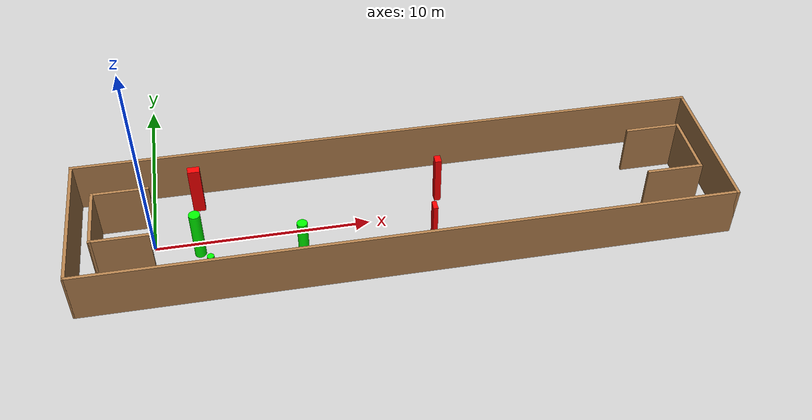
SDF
<sdf version="1.7">
 <world name="default">
  <light name="sun" type="directional">
   <pose>0 0 10 0 -0 0</pose>
   <diffuse>0.8 0.8 0.8 1</diffuse>
   <specular>0.2 0.2 0.2 1</specular>
   <attenuation>
    <range>1000</range>
    <constant>0.9</constant>
    <linear>0.01</linear>
    <quadratic>0.001</quadratic>
   </attenuation>
   <direction>-0.5 0.1 -0.9</direction>
   <spot><inner_angle>0</inner_angle><outer_angle>0</outer_angle><falloff>0</falloff></spot>
  </light>
  <model name="ground_plane">
   <static>1</static>
   <link name="link">
    <collision name="collision">
     <geometry><plane><normal>0 0 1</normal><size>100 100</size></plane></geometry>
     <surface>
      <contact><collide_bitmask>65535</collide_bitmask></contact>
      <friction><ode><mu>100</mu><mu2>50</mu2></ode></friction>
     </surface>
    </collision>
    <visual name="visual">
     <cast_shadows>0</cast_shadows>
     <geometry><plane><normal>0 0 1</normal><size>100 100</size></plane></geometry>
     <material>
      <script><uri>file://media/materials/scripts/gazebo.material</uri><name>Gazebo/Grey</name></script>
     </material>
    </visual>
   </link>
  </model>
  <gravity>0 0 -9.8</gravity>
  <magnetic_field>6e-06 2.3e-05 -4.2e-05</magnetic_field>
  <atmosphere type="adiabatic"/>
  <physics type="ode">
   <max_step_size>0.001</max_step_size>
   <real_time_factor>1</real_time_factor>
   <real_time_update_rate>1000</real_time_update_rate>
  </physics>
  <scene><ambient>0.4 0.4 0.4 1</ambient><background>0.7 0.7 0.7 1</background><shadows>1</shadows></scene>
  <spherical_coordinates>
   <surface_model>EARTH_WGS84</surface_model>
   <latitude_deg>0</latitude_deg>
   <longitude_deg>0</longitude_deg>
   <elevation>0</elevation>
   <heading_deg>0</heading_deg>
  </spherical_coordinates>
  <model name="my_base_walls">
   <link name="Wall_0">
    <collision name="Wall_0_Collision">
     <geometry><box><size>7.15 0.15 2.5</size></box></geometry>
     <pose>0 0 1.25 0 -0 0</pose>
    </collision>
    <visual name="Wall_0_Visual">
     <pose>0 0 1.25 0 -0 0</pose>
     <geometry><box><size>7.15 0.15 2.5</size></box></geometry>
     <material>
      <script><uri>file://media/materials/scripts/gazebo.material</uri><name>Gazebo/Wood</name></script>
      <ambient>1 1 1 1</ambient>
     </material>
     <meta><layer>0</layer></meta>
    </visual>
    <pose>-15 0 0 0 -0 1.5708</pose>
   </link>
   <link name="Wall_10">
    <collision name="Wall_10_Collision">
     <geometry><box><size>2.65 0.15 2.5</size></box></geometry>
     <pose>0 0 1.25 0 -0 0</pose>
    </collision>
    <visual name="Wall_10_Visual">
     <pose>0 0 1.25 0 -0 0</pose>
     <geometry><box><size>2.65 0.15 2.5</size></box></geometry>
     <material>
      <script><uri>file://media/materials/scripts/gazebo.material</uri><name>Gazebo/Wood</name></script>
      <ambient>1 1 1 1</ambient>
     </material>
     <meta><layer>0</layer></meta>
    </visual>
    <pose>-12.75 -1.5 0 0 -0 0</pose>
   </link>
   <link name="Wall_12">
    <collision name="Wall_12_Collision">
     <geometry><box><size>2.65 0.15 2.5</size></box></geometry>
     <pose>0 0 1.25 0 -0 0</pose>
    </collision>
    <visual name="Wall_12_Visual">
     <pose>0 0 1.25 0 -0 0</pose>
     <geometry><box><size>2.65 0.15 2.5</size></box></geometry>
     <material>
      <script><uri>file://media/materials/scripts/gazebo.material</uri><name>Gazebo/Wood</name></script>
      <ambient>1 1 1 1</ambient>
     </material>
     <meta><layer>0</layer></meta>
    </visual>
    <pose>-12.75 1.5 0 0 -0 0</pose>
   </link>
   <link name="Wall_14">
    <collision name="Wall_14_Collision">
     <geometry><box><size>3.15 0.15 2.5</size></box></geometry>
     <pose>0 0 1.25 0 -0 0</pose>
    </collision>
    <visual name="Wall_14_Visual">
     <pose>0 0 1.25 0 -0 0</pose>
     <geometry><box><size>3.15 0.15 2.5</size></box></geometry>
     <material>
      <script><uri>file://media/materials/scripts/gazebo.material</uri><name>Gazebo/Wood</name></script>
      <ambient>1 1 1 1</ambient>
     </material>
     <meta><layer>0</layer></meta>
    </visual>
    <pose>14 0 0 0 -0 -1.5708</pose>
   </link>
   <link name="Wall_15">
    <collision name="Wall_15_Collision">
     <geometry><box><size>2.65 0.15 2.5</size></box></geometry>
     <pose>0 0 1.25 0 -0 0</pose>
    </collision>
    <visual name="Wall_15_Visual">
     <pose>0 0 1.25 0 -0 0</pose>
     <geometry><box><size>2.65 0.15 2.5</size></box></geometry>
     <material>
      <script><uri>file://media/materials/scripts/gazebo.material</uri><name>Gazebo/Wood</name></script>
      <ambient>1 1 1 1</ambient>
     </material>
     <meta><layer>0</layer></meta>
    </visual>
    <pose>12.75 -1.5 0 0 -0 3.14159</pose>
   </link>
   <link name="Wall_17">
    <collision name="Wall_17_Collision">
     <geometry><box><size>2.65 0.15 2.5</size></box></geometry>
     <pose>0 0 1.25 0 -0 0</pose>
    </collision>
    <visual name="Wall_17_Visual">
     <pose>0 0 1.25 0 -0 0</pose>
     <geometry><box><size>2.65 0.15 2.5</size></box></geometry>
     <material>
      <script><uri>file://media/materials/scripts/gazebo.material</uri><name>Gazebo/Wood</name></script>
      <ambient>1 1 1 1</ambient>
     </material>
     <meta><layer>0</layer></meta>
    </visual>
    <pose>12.75 1.5 0 0 -0 3.14159</pose>
   </link>
   <link name="Wall_2">
    <collision name="Wall_2_Collision">
     <geometry><box><size>30.15 0.15 2.5</size></box></geometry>
     <pose>0 0 1.25 0 -0 0</pose>
    </collision>
    <visual name="Wall_2_Visual">
     <pose>0 0 1.25 0 -0 0</pose>
     <geometry><box><size>30.15 0.15 2.5</size></box></geometry>
     <material>
      <script><uri>file://media/materials/scripts/gazebo.material</uri><name>Gazebo/Wood</name></script>
      <ambient>1 1 1 1</ambient>
     </material>
     <meta><layer>0</layer></meta>
    </visual>
    <pose>-0 -3.5 0 0 -0 0</pose>
   </link>
   <link name="Wall_4">
    <collision name="Wall_4_Collision">
     <geometry><box><size>30.15 0.15 2.5</size></box></geometry>
     <pose>0 0 1.25 0 -0 0</pose>
    </collision>
    <visual name="Wall_4_Visual">
     <pose>0 0 1.25 0 -0 0</pose>
     <geometry><box><size>30.15 0.15 2.5</size></box></geometry>
     <material>
      <script><uri>file://media/materials/scripts/gazebo.material</uri><name>Gazebo/Wood</name></script>
      <ambient>1 1 1 1</ambient>
     </material>
     <meta><layer>0</layer></meta>
    </visual>
    <pose>-0 3.5 0 0 -0 0</pose>
   </link>
   <link name="Wall_6">
    <collision name="Wall_6_Collision">
     <geometry><box><size>7.15 0.15 2.5</size></box></geometry>
     <pose>0 0 1.25 0 -0 0</pose>
    </collision>
    <visual name="Wall_6_Visual">
     <pose>0 0 1.25 0 -0 0</pose>
     <geometry><box><size>7.15 0.15 2.5</size></box></geometry>
     <material>
      <script><uri>file://media/materials/scripts/gazebo.material</uri><name>Gazebo/Wood</name></script>
      <ambient>1 1 1 1</ambient>
     </material>
     <meta><layer>0</layer></meta>
    </visual>
    <pose>15 0 0 0 -0 -1.5708</pose>
   </link>
   <link name="Wall_9">
    <collision name="Wall_9_Collision">
     <geometry><box><size>3.15 0.15 2.5</size></box></geometry>
     <pose>0 0 1.25 0 -0 0</pose>
    </collision>
    <visual name="Wall_9_Visual">
     <pose>0 0 1.25 0 -0 0</pose>
     <geometry><box><size>3.15 0.15 2.5</size></box></geometry>
     <material>
      <script><uri>file://media/materials/scripts/gazebo.material</uri><name>Gazebo/Wood</name></script>
      <ambient>1 1 1 1</ambient>
     </material>
     <meta><layer>0</layer></meta>
    </visual>
    <pose>-14 0 0 0 -0 -1.5708</pose>
   </link>
   <static>1</static>
   <pose>11.5 0 0 0 -0 0</pose>
  </model>
  <model name="cylinder1">
   <static>1</static>
   <link name="link">
    <inertial>
     <mass>1</mass>
     <inertia><ixx>0.5</ixx><ixy>0</ixy><ixz>0</ixz><iyy>0.5</iyy><iyz>0</iyz><izz>1</izz></inertia>
    </inertial>
    <collision name="collision">
     <geometry><cylinder><radius>0.237547161628213</radius><length>2.5</length></cylinder></geometry>
    </collision>
    <visual name="visual">
     <geometry><cylinder><radius>0.237547161628213</radius><length>2.5</length></cylinder></geometry>
     <material>
      <ambient>0 1 0 1</ambient>
      <diffuse>0 1 0 1</diffuse>
      <specular>0.1 0.1 0.1 1</specular>
      <emissive>0 0 0 0</emissive>
     </material>
    </visual>
   </link>
   <pose>6.726532059032619 -2.0018919593272573 1.25 0 0 0</pose>
  </model>
  <model name="cylinder2">
   <static>1</static>
   <link name="link">
    <inertial>
     <mass>1</mass>
     <inertia><ixx>0.5</ixx><ixy>0</ixy><ixz>0</ixz><iyy>0.5</iyy><iyz>0</iyz><izz>1</izz></inertia>
    </inertial>
    <collision name="collision">
     <geometry><cylinder><radius>0.26445664808826863</radius><length>2.5</length></cylinder></geometry>
    </collision>
    <visual name="visual">
     <geometry><cylinder><radius>0.26445664808826863</radius><length>2.5</length></cylinder></geometry>
     <material>
      <ambient>0 1 0 1</ambient>
      <diffuse>0 1 0 1</diffuse>
      <specular>0.1 0.1 0.1 1</specular>
      <emissive>0 0 0 0</emissive>
     </material>
    </visual>
   </link>
   <pose>2.0521609035382244 -0.6374901519314609 1.25 0 0 0</pose>
  </model>
  <model name="cylinder3">
   <static>1</static>
   <link name="link">
    <inertial>
     <mass>1</mass>
     <inertia><ixx>0.5</ixx><ixy>0</ixy><ixz>0</ixz><iyy>0.5</iyy><iyz>0</iyz><izz>1</izz></inertia>
    </inertial>
    <collision name="collision">
     <geometry><cylinder><radius>0.1551586540981214</radius><length>2.5</length></cylinder></geometry>
    </collision>
    <visual name="visual">
     <geometry><cylinder><radius>0.1551586540981214</radius><length>2.5</length></cylinder></geometry>
     <material>
      <ambient>0 1 0 1</ambient>
      <diffuse>0 1 0 1</diffuse>
      <specular>0.1 0.1 0.1 1</specular>
      <emissive>0 0 0 0</emissive>
     </material>
    </visual>
   </link>
   <pose>2.6637420907193032 -3.2824322813807765 1.25 0 0 0</pose>
  </model>
  <model name="box1">
   <static>1</static>
   <link name="link">
    <inertial>
     <mass>1</mass>
     <inertia><ixx>0.083</ixx><ixy>0</ixy><ixz>0</ixz><iyy>0.083</iyy><iyz>0</iyz><izz>0.083</izz></inertia>
    </inertial>
    <collision name="collision">
     <geometry><box><size>0.3024793525869404 0.4372017351994497 2.5</size></box></geometry>
    </collision>
    <visual name="visual">
     <geometry><box><size>0.3024793525869404 0.4372017351994497 2.5</size></box></geometry>
     <material>
      <ambient>1 0 0 1</ambient>
      <diffuse>1 0 0 1</diffuse>
      <specular>0.1 0.1 0.1 1</specular>
      <emissive>0 0 0 0</emissive>
     </material>
    </visual>
    <sensor name="my_contact" type="contact">
     <contact><collision>box_collision</collision><topic>__default_topic__</topic></contact>
    </sensor>
   </link>
   <pose>13.478341849203035 1.1178996419239553 1.25 0 0 0</pose>
  </model>
  <model name="box2">
   <static>1</static>
   <link name="link">
    <inertial>
     <mass>1</mass>
     <inertia><ixx>0.083</ixx><ixy>0</ixy><ixz>0</ixz><iyy>0.083</iyy><iyz>0</iyz><izz>0.083</izz></inertia>
    </inertial>
    <collision name="collision">
     <geometry><box><size>0.5700187566564657 0.37193375641627624 2.5</size></box></geometry>
    </collision>
    <visual name="visual">
     <geometry><box><size>0.5700187566564657 0.37193375641627624 2.5</size></box></geometry>
     <material>
      <ambient>1 0 0 1</ambient>
      <diffuse>1 0 0 1</diffuse>
      <specular>0.1 0.1 0.1 1</specular>
      <emissive>0 0 0 0</emissive>
     </material>
    </visual>
    <sensor name="my_contact" type="contact">
     <contact><collision>box_collision</collision><topic>__default_topic__</topic></contact>
    </sensor>
   </link>
   <pose>2.1214636947329115 2.3677395663320375 1.25 0 0 0</pose>
  </model>
  <model name="box3">
   <static>1</static>
   <link name="link">
    <inertial>
     <mass>1</mass>
     <inertia><ixx>0.083</ixx><ixy>0</ixy><ixz>0</ixz><iyy>0.083</iyy><iyz>0</iyz><izz>0.083</izz></inertia>
    </inertial>
    <collision name="collision">
     <geometry><box><size>0.2159246662014887 0.4620003556129947 2.5</size></box></geometry>
    </collision>
    <visual name="visual">
     <geometry><box><size>0.2159246662014887 0.4620003556129947 2.5</size></box></geometry>
     <material>
      <ambient>1 0 0 1</ambient>
      <diffuse>1 0 0 1</diffuse>
      <specular>0.1 0.1 0.1 1</specular>
      <emissive>0 0 0 0</emissive>
     </material>
    </visual>
    <sensor name="my_contact" type="contact">
     <contact><collision>box_collision</collision><topic>__default_topic__</topic></contact>
    </sensor>
   </link>
   <pose>12.733491673180144 -1.907546584430598 1.25 0 0 0</pose>
  </model>
 </world>
</sdf>
